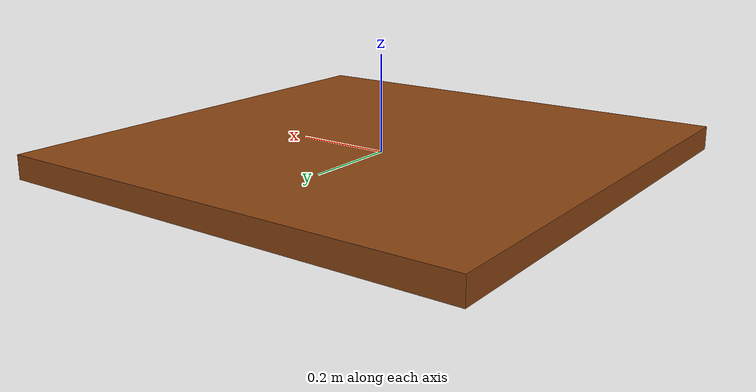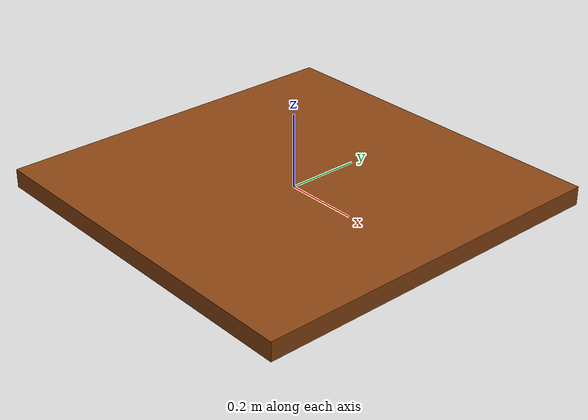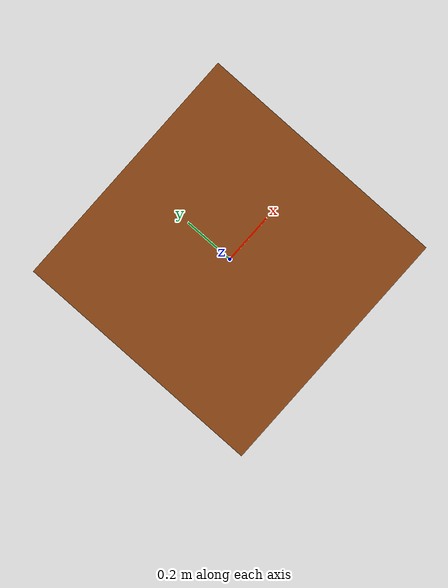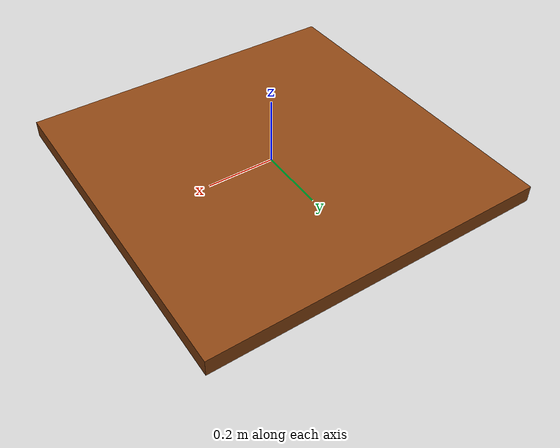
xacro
<?xml version="1.0"?>
<robot xmlns:xacro="http://ros.org/wiki/xacro" name="table_model2">

  <!-- Define the table -->
  <link name="object_table">
    <visual>
      <origin xyz="0 0 0" rpy="0 0 0"/>
      <geometry>
        <box size="1 1 0.05"/>
      </geometry>
      <material name="brown">
        <color rgba="0.545 0.270 0.0745 1.0"/>
      </material>
    </visual>
    <collision>
      <origin xyz="0 0 0" rpy="0 0 0"/>
      <geometry>
        <box size="1 1 0.05"/>
      </geometry>
    </collision>
    <inertial>
      <mass value="20.0"/>
      <origin xyz="0 0 0" rpy="0 0 0"/>
      <inertia ixx="1" iyy="1" izz="1" ixy="0" ixz="0" iyz="0"/>
    </inertial>
  </link>

  <!-- Define the world -->
  <link name="world"/>

  <!-- Fix the table to the world -->
  <joint name="world_table_fixed_joint" type="fixed">
    <parent link="world"/>
    <child link="object_table"/>
    <origin xyz="0 0 0" rpy="0 0 0"/>
  </joint>

  <!-- Make the table static so it doesn't fall in Gazebo -->
  <gazebo reference="object_table">
    <static>true</static>
  </gazebo>

</robot>
